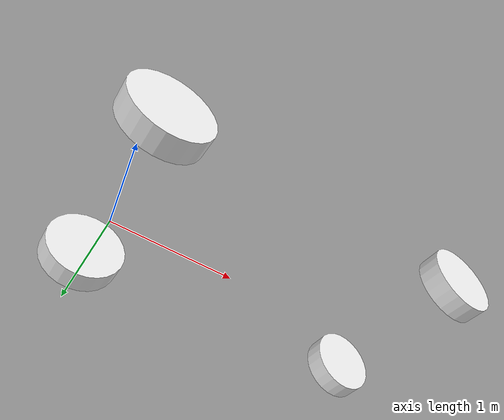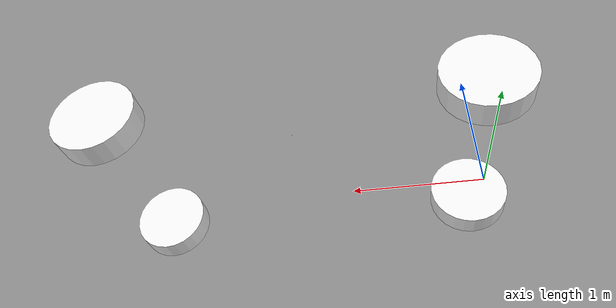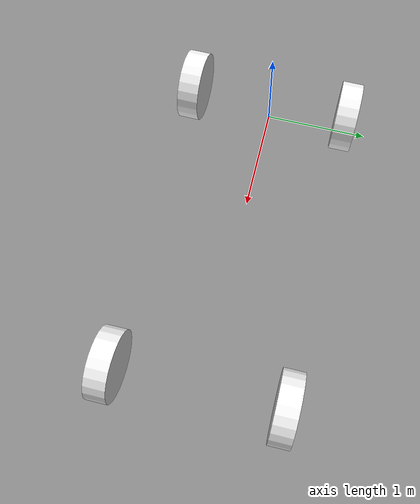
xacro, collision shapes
<?xml version="1.0"?>
<!-- created with Phobos 0.7 -->
  <robot name="fusion_13" xmlns:xacro="http://www.ros.org/wiki/xacro">
    <xacro:arg name="dae_file" default="$(find vehicle_description)/meshes/fusion_13/body.dae"/>

    <link name="base_footprint">
    </link>

    <link name="base_link">
      <inertial>
        <origin xyz="1.4225 0 0.25" rpy="0 0 0"/>
        <mass value="1500.0"/>
        <inertia ixx="1000.0" ixy="0" ixz="0" iyy="1000.0" iyz="0" izz="1000.0"/>
      </inertial>
      <visual name="chassis">
        <origin xyz="1.3641 0 -0.373676" rpy="0 0 1.570796"/>
        <geometry>
          <mesh filename="file://$(arg dae_file)" scale="1 0.97 1"/>
        </geometry>
        <material name="black.001"/>
      </visual>
      <collision name="chassis_collision">
        <origin xyz="1.51 -0.03046 0.325149" rpy="1.570796 0 -3.141593"/>
        <geometry>
          <mesh filename="package://vehicle_description/meshes/body_collision.stl" scale="0.000965 0.001 0.001"/>
        </geometry>
      </collision>
    </link>

    <link name="steer_fl">
      <inertial>
        <origin xyz="-0.013054 -0.0295 0" rpy="0 0 0"/>
        <mass value="1.0"/>
        <inertia ixx="0.037227" ixy="0" ixz="0" iyy="0.04" iyz="0" izz="0.06"/>
      </inertial>
    </link>

    <link name="steer_fr">
      <inertial>
        <origin xyz="-0.01305 0.0275 0" rpy="0 0 0"/>
        <mass value="1.0"/>
        <inertia ixx="0.037227" ixy="0" ixz="0" iyy="0.04" iyz="0" izz="0.06"/>
      </inertial>
    </link>

    <link name="wheel_fl">
      <inertial>
        <origin xyz="0 0 0" rpy="0 -3.141593 0"/>
        <mass value="10.0"/>
        <inertia ixx="0.305583" ixy="0" ixz="0" iyy="0.305583" iyz="0" izz="0.5445"/>
      </inertial>
      <visual name="wheel_fl_visual">
        <origin xyz="0 0 0.0385" rpy="-1.570796 -1.570796 0"/>
        <geometry>
          <mesh filename="package://vehicle_description/meshes/fusion_13/wheel.dae" scale="0.01 0.01 0.01"/>
        </geometry>
        <material name="carpaint_002"/>
      </visual>
      <collision name="wheel_fl_collision">
        <origin xyz="0 0 0" rpy="0 -3.141593 0"/>
        <geometry>
          <cylinder radius="0.33" length="0.2"/>
        </geometry>
      </collision>
    </link>

    <link name="wheel_fr">
      <inertial>
        <origin xyz="0 0 0" rpy="0 3.141593 0"/>
        <mass value="10.0"/>
        <inertia ixx="0.305583" ixy="0" ixz="0" iyy="0.305583" iyz="0" izz="0.5445"/>
      </inertial>
      <visual name="wheel_fr_visual">
        <origin xyz="0 0 -0.043777" rpy="-1.570796 1.570796 0"/>
        <geometry>
          <mesh filename="package://vehicle_description/meshes/fusion_13/wheel.dae" scale="0.01 0.01 0.01"/>
        </geometry>
        <material name="carpaint_002.001"/>
      </visual>
      <collision name="wheel_fr_collision">
        <origin xyz="0 0 -0.0035" rpy="0 3.141593 0"/>
        <geometry>
          <cylinder radius="0.33" length="0.2"/>
        </geometry>
      </collision>
    </link>

    <link name="wheel_rl">
      <inertial>
        <origin xyz="0 0 -0.021117" rpy="0 3.141593 0"/>
        <mass value="10.0"/>
        <inertia ixx="0.305583" ixy="0" ixz="0" iyy="0.305583" iyz="0" izz="0.5445"/>
      </inertial>
      <visual name="wheel_rl_visual">
        <origin xyz="0 0 0.017382" rpy="-1.570796 -1.570796 0"/>
        <geometry>
          <mesh filename="package://vehicle_description/meshes/fusion_13/wheel.dae" scale="0.01 0.01 0.01"/>
        </geometry>
        <material name="carpaint_002.003"/>
      </visual>
      <collision name="wheel_rl_collision">
        <origin xyz="0 0 -0.021118" rpy="0 3.141593 0"/>
        <geometry>
          <cylinder radius="0.33" length="0.2"/>
        </geometry>
      </collision>
    </link>

    <link name="wheel_rr">
      <inertial>
        <origin xyz="0 0 0.0205" rpy="0 3.141593 0"/>
        <mass value="10.0"/>
        <inertia ixx="0.305583" ixy="0" ixz="0" iyy="0.305583" iyz="0" izz="0.5445"/>
      </inertial>
      <visual name="wheel_rr_visual">
        <origin xyz="0 0 -0.019214" rpy="-1.570796 1.570796 0"/>
        <geometry>
          <mesh filename="package://vehicle_description/meshes/fusion_13/wheel.dae" scale="0.01 0.01 0.01"/>
        </geometry>
        <material name="carpaint_002.002"/>
      </visual>
      <collision name="wheel_rr_collision">
        <origin xyz="0 0 0.0205" rpy="0 3.141593 0"/>
        <geometry>
          <cylinder radius="0.33" length="0.2"/>
        </geometry>
      </collision>
    </link>

    <joint name="base_link_joint" type="fixed">
      <origin xyz="0 0 0.33" rpy="0 0 0"/>
      <parent link="base_footprint"/>
      <child link="base_link"/>
    </joint>

    <joint name="steer_fl_joint" type="revolute">
      <origin xyz="2.85 0.79121 0" rpy="0 0 0"/>
      <parent link="base_link"/>
      <child link="steer_fl"/>
      <axis xyz="0 0 1.0"/>
      <limit lower="-0.6" upper="0.6" effort="0" velocity="0"/>
    </joint>

    <joint name="steer_fr_joint" type="revolute">
      <origin xyz="2.85 -0.79121 0" rpy="0 0 0"/>
      <parent link="base_link"/>
      <child link="steer_fr"/>
      <axis xyz="0 0 1.0"/>
      <limit lower="-0.6" upper="0.6" effort="0" velocity="0"/>
    </joint>

    <joint name="wheel_fl_joint" type="continuous">
      <origin xyz="0 0 0" rpy="1.570796 0 -3.141593"/>
      <parent link="steer_fl"/>
      <child link="wheel_fl"/>
      <axis xyz="0 0 1.0"/>
      <limit effort="0" velocity="22.0"/>
    </joint>

    <joint name="wheel_fr_joint" type="continuous">
      <origin xyz="0 0 0" rpy="1.570796 0 -3.141593"/>
      <parent link="steer_fr"/>
      <child link="wheel_fr"/>
      <axis xyz="0 0 1.0"/>
      <limit effort="0" velocity="22.0"/>
    </joint>

    <joint name="wheel_rl_joint" type="continuous">
      <origin xyz="0 0.7874 0" rpy="1.570796 0 -3.141593"/>
      <parent link="base_link"/>
      <child link="wheel_rl"/>
      <axis xyz="0 0 1.0"/>
      <limit effort="5000.0" velocity="22.0"/>
    </joint>

    <joint name="wheel_rr_joint" type="continuous">
      <origin xyz="0 -0.7874 0" rpy="1.570796 0 -3.141593"/>
      <parent link="base_link"/>
      <child link="wheel_rr"/>
      <axis xyz="0 0 1.0"/>
      <limit effort="5000.0" velocity="22.0"/>
    </joint>

    <material name="black.001">
      <color rgba="0 0 0 1.0"/>
    </material>

    <material name="carpaint_002">
      <color rgba="0.941177 0.941177 0.941177 1.0"/>
    </material>

    <material name="carpaint_002.001">
      <color rgba="0.941177 0.941177 0.941177 1.0"/>
    </material>

    <material name="carpaint_002.002">
      <color rgba="0.941177 0.941177 0.941177 1.0"/>
    </material>

    <material name="carpaint_002.003">
      <color rgba="0.941177 0.941177 0.941177 1.0"/>
    </material>

  </robot>
